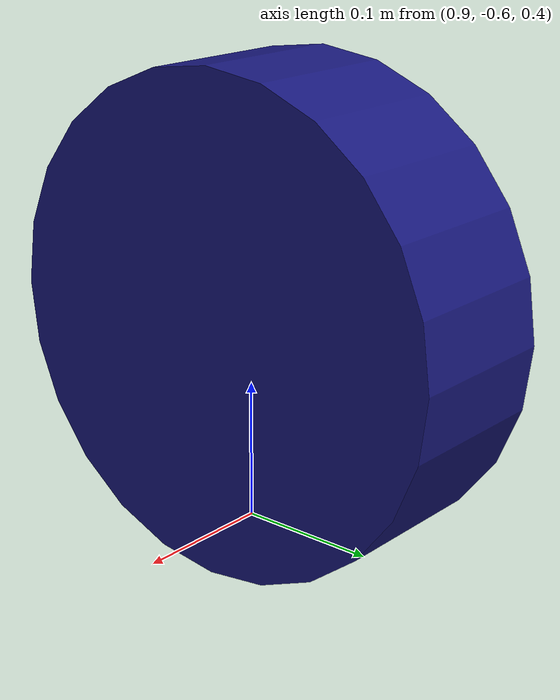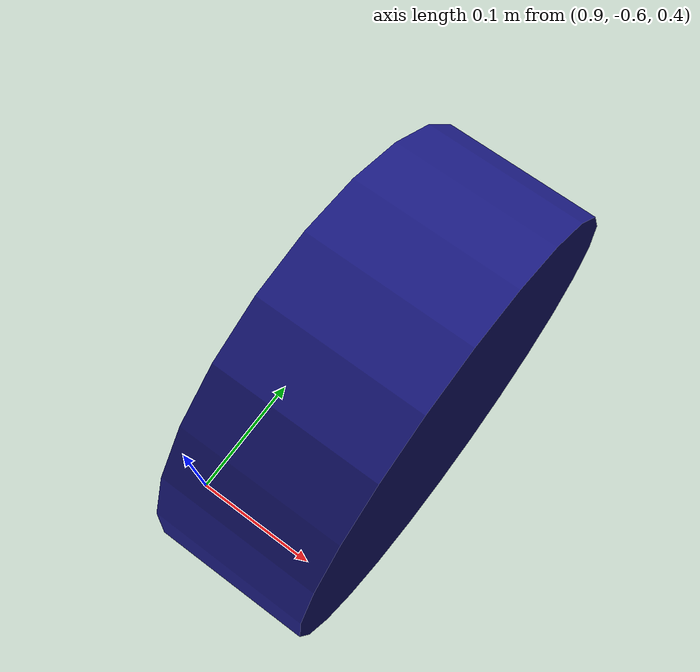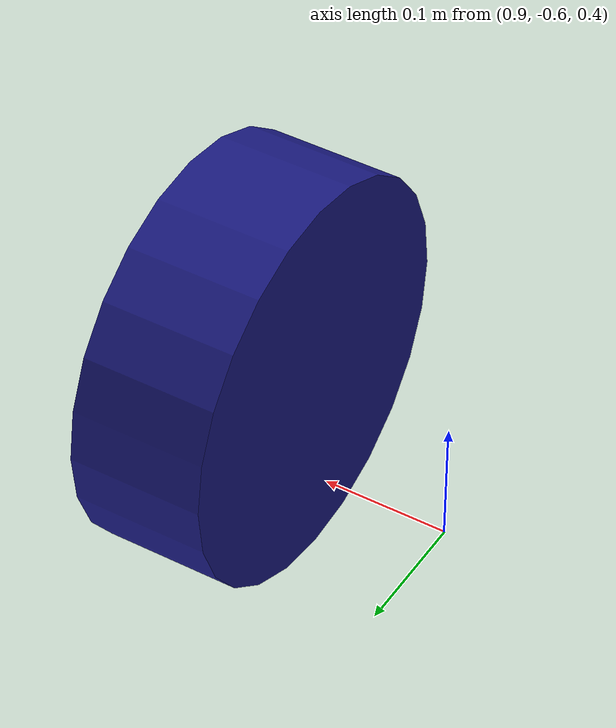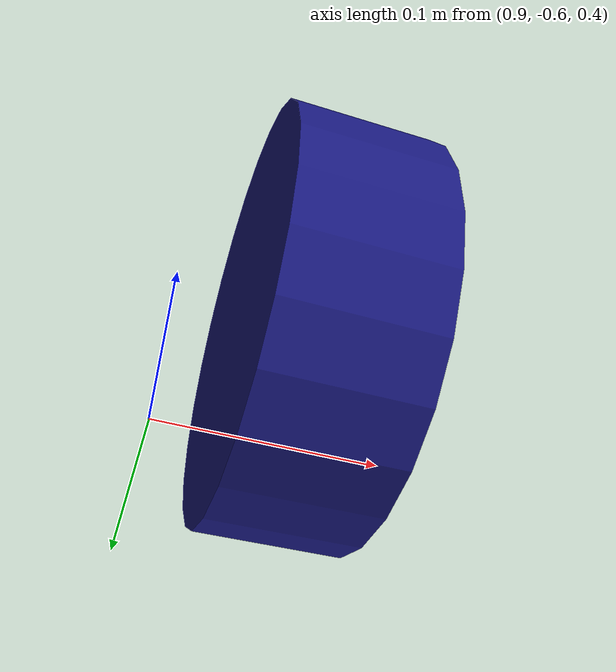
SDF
<?xml version="1.0"?>
<sdf version="1.6">
  <model name="circular_object">
    <link name="link">
      <inertial>
        <pose>1 -0.5 0.6 0 1.57 0</pose>
        <mass>0.001</mass>
        <inertia>
          <ixx>3.7499999999999997e-06</ixx>
          <ixy>0.0</ixy>
          <ixz>0.0</ixz>
          <iyy>1.8750008333333333e-06</iyy>
          <iyz>0.0</iyz>
          <izz>1.8750008333333333e-06</izz>
        </inertia>
      </inertial>
      <visual name="front_visual">
        <pose>1 -0.5 0.6 0 1.57 0</pose>
        <geometry>
          <cylinder>
           <radius>0.15</radius>
           <length>0.1</length>
           </cylinder>
        </geometry>
        <material>
          <ambient>0.1 0.1 0.1 1</ambient>
          <diffuse>0.1 0.1 0.5 1</diffuse>
          <specular>0 0 0 0</specular>
          <emissive>0 0 0 1</emissive>
        </material>
      </visual>
      <collision name="collision">
        <pose>1 -0.5 0.6 0 1.57 0</pose>
        <geometry>
          <cylinder>
           <radius>0.15</radius>
           <length>0.01</length>
           </cylinder>
        </geometry>
      </collision>
    </link>
  </model>
</sdf>
